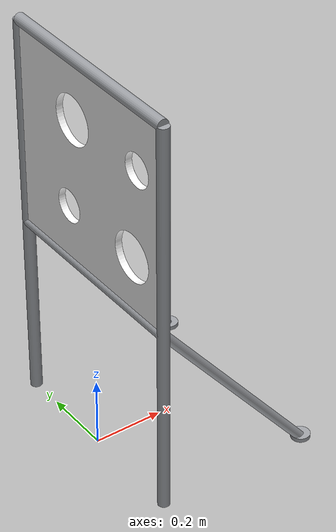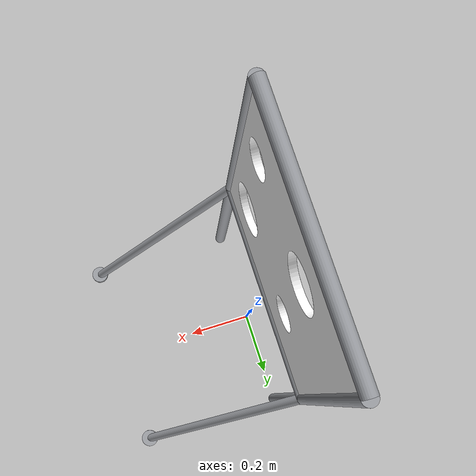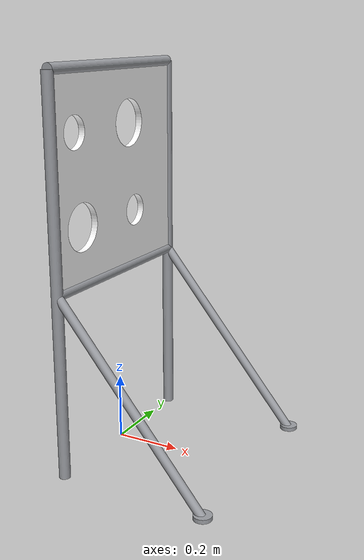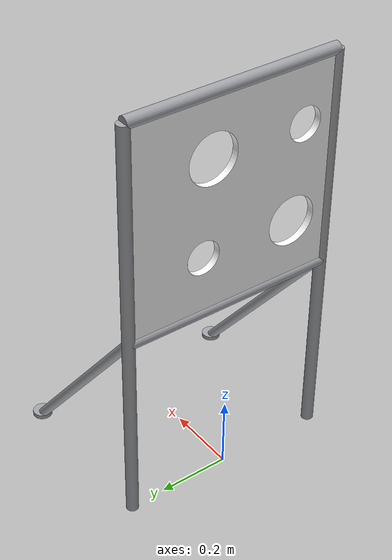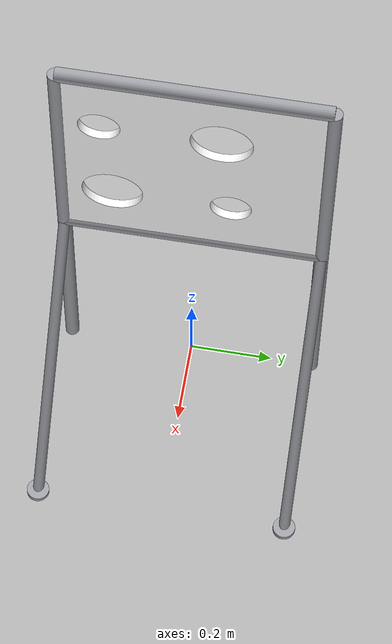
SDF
<?xml version="1.0"?>
<sdf version="1.9">
  <model name="robosub_torpedo_survey_repair">
    <static>true</static>
    <plugin filename="gz-sim-label-system" name="gz::sim::systems::Label">
      <label>15</label>
    </plugin>
    <link name="leg_0">
      <pose>0 -0.3 0.575 0 0 0</pose>
      <inertial>
        <pose>0 0 0 0 0 0</pose>
        <mass>2</mass>
        <inertia>
          <ixx>0.220556</ixx><ixy>0</ixy><ixz>0</ixz>
          <iyy>0.220556</iyy><iyz>0</iyz>
          <izz>0.00027889</izz>
        </inertia>
      </inertial>
      <visual name="leg_0_visual">
        <pose>0 0 0 0 0 0</pose>
        <geometry><cylinder><radius>0.0167</radius><length>1.15</length></cylinder></geometry>
        <material>
          <ambient>0.62 0.63 0.65 1</ambient>
          <diffuse>0.62 0.63 0.65 1</diffuse>
          <specular>0.55 0.55 0.55 1</specular>
          <emissive>0.182 0.182 0.182 1</emissive>
          <pbr>
            <metal>
              <albedo_map>model://robosub_textures/rough_pvc.png</albedo_map>
              <metalness>0.0</metalness>
              <roughness_map>model://robosub_textures/rough_pvc.png</roughness_map>
              <normal_map>model://robosub_textures/norm_pvc.png</normal_map>
            </metal>
          </pbr>
        </material>
      </visual>
      <collision name="leg_0_collision">
        <pose>0 0 0 0 0 0</pose>
        <geometry><cylinder><radius>0.0167</radius><length>1.15</length></cylinder></geometry>
      </collision>
    </link>
    <link name="leg_1">
      <pose>0 0.3 0.575 0 0 0</pose>
      <inertial>
        <pose>0 0 0 0 0 0</pose>
        <mass>2</mass>
        <inertia>
          <ixx>0.220556</ixx><ixy>0</ixy><ixz>0</ixz>
          <iyy>0.220556</iyy><iyz>0</iyz>
          <izz>0.00027889</izz>
        </inertia>
      </inertial>
      <visual name="leg_1_visual">
        <pose>0 0 0 0 0 0</pose>
        <geometry><cylinder><radius>0.0167</radius><length>1.15</length></cylinder></geometry>
        <material>
          <ambient>0.62 0.63 0.65 1</ambient>
          <diffuse>0.62 0.63 0.65 1</diffuse>
          <specular>0.55 0.55 0.55 1</specular>
          <emissive>0.182 0.182 0.182 1</emissive>
          <pbr>
            <metal>
              <albedo_map>model://robosub_textures/rough_pvc.png</albedo_map>
              <metalness>0.0</metalness>
              <roughness_map>model://robosub_textures/rough_pvc.png</roughness_map>
              <normal_map>model://robosub_textures/norm_pvc.png</normal_map>
            </metal>
          </pbr>
        </material>
      </visual>
      <collision name="leg_1_collision">
        <pose>0 0 0 0 0 0</pose>
        <geometry><cylinder><radius>0.0167</radius><length>1.15</length></cylinder></geometry>
      </collision>
    </link>
    <link name="rail_top">
      <pose>0 0 1.15 1.5708 0 0</pose>
      <inertial>
        <pose>0 0 0 0 0 0</pose>
        <mass>1.2</mass>
        <inertia>
          <ixx>0.0360837</ixx><ixy>0</ixy><ixz>0</ixz>
          <iyy>0.0360837</iyy><iyz>0</iyz>
          <izz>0.000167334</izz>
        </inertia>
      </inertial>
      <visual name="rail_top_visual">
        <pose>0 0 0 0 0 0</pose>
        <geometry><cylinder><radius>0.0167</radius><length>0.6</length></cylinder></geometry>
        <material>
          <ambient>0.62 0.63 0.65 1</ambient>
          <diffuse>0.62 0.63 0.65 1</diffuse>
          <specular>0.55 0.55 0.55 1</specular>
          <emissive>0.182 0.182 0.182 1</emissive>
          <pbr>
            <metal>
              <albedo_map>model://robosub_textures/rough_pvc.png</albedo_map>
              <metalness>0.0</metalness>
              <roughness_map>model://robosub_textures/rough_pvc.png</roughness_map>
              <normal_map>model://robosub_textures/norm_pvc.png</normal_map>
            </metal>
          </pbr>
        </material>
      </visual>
      <collision name="rail_top_collision">
        <pose>0 0 0 0 0 0</pose>
        <geometry><cylinder><radius>0.0167</radius><length>0.6</length></cylinder></geometry>
      </collision>
    </link>
    <link name="rail_bottom">
      <pose>0 0 0.55 1.5708 0 0</pose>
      <inertial>
        <pose>0 0 0 0 0 0</pose>
        <mass>1.2</mass>
        <inertia>
          <ixx>0.0360837</ixx><ixy>0</ixy><ixz>0</ixz>
          <iyy>0.0360837</iyy><iyz>0</iyz>
          <izz>0.000167334</izz>
        </inertia>
      </inertial>
      <visual name="rail_bottom_visual">
        <pose>0 0 0 0 0 0</pose>
        <geometry><cylinder><radius>0.0167</radius><length>0.6</length></cylinder></geometry>
        <material>
          <ambient>0.62 0.63 0.65 1</ambient>
          <diffuse>0.62 0.63 0.65 1</diffuse>
          <specular>0.55 0.55 0.55 1</specular>
          <emissive>0.182 0.182 0.182 1</emissive>
          <pbr>
            <metal>
              <albedo_map>model://robosub_textures/rough_pvc.png</albedo_map>
              <metalness>0.0</metalness>
              <roughness_map>model://robosub_textures/rough_pvc.png</roughness_map>
              <normal_map>model://robosub_textures/norm_pvc.png</normal_map>
            </metal>
          </pbr>
        </material>
      </visual>
      <collision name="rail_bottom_collision">
        <pose>0 0 0 0 0 0</pose>
        <geometry><cylinder><radius>0.0167</radius><length>0.6</length></cylinder></geometry>
      </collision>
    </link>
    <link name="brace_0">
      <pose>0.225 -0.3 0.275 0 2.45586 0</pose>
      <inertial>
        <pose>0 0 0 0 0 0</pose>
        <mass>0.8</mass>
        <inertia>
          <ixx>0.0337024</ixx><ixy>0</ixy><ixz>0</ixz>
          <iyy>0.0337024</iyy><iyz>0</iyz>
          <izz>7.13958e-05</izz>
        </inertia>
      </inertial>
      <visual name="brace_0_visual">
        <pose>0 0 0 0 0 0</pose>
        <geometry><cylinder><radius>0.01336</radius><length>0.710634</length></cylinder></geometry>
        <material>
          <ambient>0.62 0.63 0.65 1</ambient>
          <diffuse>0.62 0.63 0.65 1</diffuse>
          <specular>0.55 0.55 0.55 1</specular>
          <emissive>0.182 0.182 0.182 1</emissive>
          <pbr>
            <metal>
              <albedo_map>model://robosub_textures/rough_pvc.png</albedo_map>
              <metalness>0.0</metalness>
              <roughness_map>model://robosub_textures/rough_pvc.png</roughness_map>
              <normal_map>model://robosub_textures/norm_pvc.png</normal_map>
            </metal>
          </pbr>
        </material>
      </visual>
      <collision name="brace_0_collision">
        <pose>0 0 0 0 0 0</pose>
        <geometry><cylinder><radius>0.01336</radius><length>0.710634</length></cylinder></geometry>
      </collision>
    </link>
    <link name="brace_foot_0">
      <pose>0.45 -0.3 0.006 0 0 0</pose>
      <inertial>
        <pose>0 0 0 0 0 0</pose>
        <mass>0.3</mass>
        <inertia>
          <ixx>5.71469e-05</ixx><ixy>0</ixy><ixz>0</ixz>
          <iyy>5.71469e-05</iyy><iyz>0</iyz>
          <izz>0.000107094</izz>
        </inertia>
      </inertial>
      <visual name="brace_foot_0_visual">
        <pose>0 0 0 0 0 0</pose>
        <geometry><cylinder><radius>0.02672</radius><length>0.012</length></cylinder></geometry>
        <material>
          <ambient>0.62 0.63 0.65 1</ambient>
          <diffuse>0.62 0.63 0.65 1</diffuse>
          <specular>0.55 0.55 0.55 1</specular>
          <emissive>0.182 0.182 0.182 1</emissive>
          <pbr>
            <metal>
              <albedo_map>model://robosub_textures/rough_pvc.png</albedo_map>
              <metalness>0.0</metalness>
              <roughness_map>model://robosub_textures/rough_pvc.png</roughness_map>
              <normal_map>model://robosub_textures/norm_pvc.png</normal_map>
            </metal>
          </pbr>
        </material>
      </visual>
      <collision name="brace_foot_0_collision">
        <pose>0 0 0 0 0 0</pose>
        <geometry><cylinder><radius>0.02672</radius><length>0.012</length></cylinder></geometry>
        <surface>
          <friction>
            <ode><mu>0.8</mu><mu2>0.8</mu2></ode>
            <bullet><friction>0.8</friction><friction2>0.8</friction2></bullet>
          </friction>
        </surface>
      </collision>
    </link>
    <link name="brace_1">
      <pose>0.225 0.3 0.275 0 2.45586 0</pose>
      <inertial>
        <pose>0 0 0 0 0 0</pose>
        <mass>0.8</mass>
        <inertia>
          <ixx>0.0337024</ixx><ixy>0</ixy><ixz>0</ixz>
          <iyy>0.0337024</iyy><iyz>0</iyz>
          <izz>7.13958e-05</izz>
        </inertia>
      </inertial>
      <visual name="brace_1_visual">
        <pose>0 0 0 0 0 0</pose>
        <geometry><cylinder><radius>0.01336</radius><length>0.710634</length></cylinder></geometry>
        <material>
          <ambient>0.62 0.63 0.65 1</ambient>
          <diffuse>0.62 0.63 0.65 1</diffuse>
          <specular>0.55 0.55 0.55 1</specular>
          <emissive>0.182 0.182 0.182 1</emissive>
          <pbr>
            <metal>
              <albedo_map>model://robosub_textures/rough_pvc.png</albedo_map>
              <metalness>0.0</metalness>
              <roughness_map>model://robosub_textures/rough_pvc.png</roughness_map>
              <normal_map>model://robosub_textures/norm_pvc.png</normal_map>
            </metal>
          </pbr>
        </material>
      </visual>
      <collision name="brace_1_collision">
        <pose>0 0 0 0 0 0</pose>
        <geometry><cylinder><radius>0.01336</radius><length>0.710634</length></cylinder></geometry>
      </collision>
    </link>
    <link name="brace_foot_1">
      <pose>0.45 0.3 0.006 0 0 0</pose>
      <inertial>
        <pose>0 0 0 0 0 0</pose>
        <mass>0.3</mass>
        <inertia>
          <ixx>5.71469e-05</ixx><ixy>0</ixy><ixz>0</ixz>
          <iyy>5.71469e-05</iyy><iyz>0</iyz>
          <izz>0.000107094</izz>
        </inertia>
      </inertial>
      <visual name="brace_foot_1_visual">
        <pose>0 0 0 0 0 0</pose>
        <geometry><cylinder><radius>0.02672</radius><length>0.012</length></cylinder></geometry>
        <material>
          <ambient>0.62 0.63 0.65 1</ambient>
          <diffuse>0.62 0.63 0.65 1</diffuse>
          <specular>0.55 0.55 0.55 1</specular>
          <emissive>0.182 0.182 0.182 1</emissive>
          <pbr>
            <metal>
              <albedo_map>model://robosub_textures/rough_pvc.png</albedo_map>
              <metalness>0.0</metalness>
              <roughness_map>model://robosub_textures/rough_pvc.png</roughness_map>
              <normal_map>model://robosub_textures/norm_pvc.png</normal_map>
            </metal>
          </pbr>
        </material>
      </visual>
      <collision name="brace_foot_1_collision">
        <pose>0 0 0 0 0 0</pose>
        <geometry><cylinder><radius>0.02672</radius><length>0.012</length></cylinder></geometry>
        <surface>
          <friction>
            <ode><mu>0.8</mu><mu2>0.8</mu2></ode>
            <bullet><friction>0.8</friction><friction2>0.8</friction2></bullet>
          </friction>
        </surface>
      </collision>
    </link>
    <link name="board">
      <pose>0 0 0.85 0 0 0</pose>
      <inertial>
        <pose>0 0 0 0 0 0</pose>
        <mass>3</mass>
        <inertia>
          <ixx>0.18</ixx><ixy>0</ixy><ixz>0</ixz>
          <iyy>0.0901</iyy><iyz>0</iyz>
          <izz>0.0901</izz>
        </inertia>
      </inertial>
      <visual name="board_visual">
        <pose>0 0 0 0 0 0</pose>
        <geometry><mesh><uri>model://robosub_meshes/meshes/torpedo_plate.obj</uri></mesh></geometry>
        <material>
          <ambient>1 1 1 1</ambient>
          <diffuse>1 1 1 1</diffuse>
          <specular>0.06 0.06 0.06 1</specular>
          <emissive>0.1 0.1 0.1 1</emissive>
          <pbr>
            <metal>
              <albedo_map>model://robosub_textures/torpedo_panel_survey_repair.png</albedo_map>
              <metalness>0.0</metalness>
              <roughness>0.6</roughness>
            </metal>
          </pbr>
        </material>
      </visual>
    </link>
    <link name="plate_c0">
      <pose>0 0 0.561538 0 0 0</pose>
      <inertial>
        <pose>0 0 0 0 0 0</pose>
        <mass>0.05</mass>
        <inertia>
          <ixx>0.00150222</ixx><ixy>0</ixy><ixz>0</ixz>
          <iyy>3.8856e-06</iyy><iyz>0</iyz>
          <izz>0.00150167</izz>
        </inertia>
      </inertial>
      <collision name="plate_c0_collision">
        <pose>0 0 0 0 0 0</pose>
        <geometry><box><size>0.02 0.6 0.0230769</size></box></geometry>
      </collision>
    </link>
    <link name="plate_c1">
      <pose>0 0 0.584615 0 0 0</pose>
      <inertial>
        <pose>0 0 0 0 0 0</pose>
        <mass>0.05</mass>
        <inertia>
          <ixx>0.00150222</ixx><ixy>0</ixy><ixz>0</ixz>
          <iyy>3.8856e-06</iyy><iyz>0</iyz>
          <izz>0.00150167</izz>
        </inertia>
      </inertial>
      <collision name="plate_c1_collision">
        <pose>0 0 0 0 0 0</pose>
        <geometry><box><size>0.02 0.6 0.0230769</size></box></geometry>
      </collision>
    </link>
    <link name="plate_c2">
      <pose>0 0 0.607692 0 0 0</pose>
      <inertial>
        <pose>0 0 0 0 0 0</pose>
        <mass>0.05</mass>
        <inertia>
          <ixx>0.00150222</ixx><ixy>0</ixy><ixz>0</ixz>
          <iyy>3.8856e-06</iyy><iyz>0</iyz>
          <izz>0.00150167</izz>
        </inertia>
      </inertial>
      <collision name="plate_c2_collision">
        <pose>0 0 0 0 0 0</pose>
        <geometry><box><size>0.02 0.6 0.0230769</size></box></geometry>
      </collision>
    </link>
    <link name="plate_c3">
      <pose>0 0 0.630769 0 0 0</pose>
      <inertial>
        <pose>0 0 0 0 0 0</pose>
        <mass>0.05</mass>
        <inertia>
          <ixx>0.00150222</ixx><ixy>0</ixy><ixz>0</ixz>
          <iyy>3.8856e-06</iyy><iyz>0</iyz>
          <izz>0.00150167</izz>
        </inertia>
      </inertial>
      <collision name="plate_c3_collision">
        <pose>0 0 0 0 0 0</pose>
        <geometry><box><size>0.02 0.6 0.0230769</size></box></geometry>
      </collision>
    </link>
    <link name="plate_c4">
      <pose>0 -0.255503 0.653846 0 0 0</pose>
      <inertial>
        <pose>0 0 0 0 0 0</pose>
        <mass>0.05</mass>
        <inertia>
          <ixx>3.52193e-05</ixx><ixy>0</ixy><ixz>0</ixz>
          <iyy>3.8856e-06</iyy><iyz>0</iyz>
          <izz>3.46671e-05</izz>
        </inertia>
      </inertial>
      <collision name="plate_c4_collision">
        <pose>0 0 0 0 0 0</pose>
        <geometry><box><size>0.02 0.0889949 0.0230769</size></box></geometry>
      </collision>
    </link>
    <link name="plate_c5">
      <pose>0 0.0725025 0.653846 0 0 0</pose>
      <inertial>
        <pose>0 0 0 0 0 0</pose>
        <mass>0.05</mass>
        <inertia>
          <ixx>0.000864804</ixx><ixy>0</ixy><ixz>0</ixz>
          <iyy>3.8856e-06</iyy><iyz>0</iyz>
          <izz>0.000864252</izz>
        </inertia>
      </inertial>
      <collision name="plate_c5_collision">
        <pose>0 0 0 0 0 0</pose>
        <geometry><box><size>0.02 0.454995 0.0230769</size></box></geometry>
      </collision>
    </link>
    <link name="plate_c6">
      <pose>0 -0.26984 0.676923 0 0 0</pose>
      <inertial>
        <pose>0 0 0 0 0 0</pose>
        <mass>0.05</mass>
        <inertia>
          <ixx>1.73791e-05</ixx><ixy>0</ixy><ixz>0</ixz>
          <iyy>3.8856e-06</iyy><iyz>0</iyz>
          <izz>1.68268e-05</izz>
        </inertia>
      </inertial>
      <collision name="plate_c6_collision">
        <pose>0 0 0 0 0 0</pose>
        <geometry><box><size>0.02 0.0603194 0.0230769</size></box></geometry>
      </collision>
    </link>
    <link name="plate_c7">
      <pose>0 -0.0314609 0.676923 0 0 0</pose>
      <inertial>
        <pose>0 0 0 0 0 0</pose>
        <mass>0.05</mass>
        <inertia>
          <ixx>0.000152188</ixx><ixy>0</ixy><ixz>0</ixz>
          <iyy>3.8856e-06</iyy><iyz>0</iyz>
          <izz>0.000151636</izz>
        </inertia>
      </inertial>
      <collision name="plate_c7_collision">
        <pose>0 0 0 0 0 0</pose>
        <geometry><box><size>0.02 0.189717 0.0230769</size></box></geometry>
      </collision>
    </link>
    <link name="plate_c8">
      <pose>0 0.205551 0.676923 0 0 0</pose>
      <inertial>
        <pose>0 0 0 0 0 0</pose>
        <mass>0.05</mass>
        <inertia>
          <ixx>0.000150895</ixx><ixy>0</ixy><ixz>0</ixz>
          <iyy>3.8856e-06</iyy><iyz>0</iyz>
          <izz>0.000150343</izz>
        </inertia>
      </inertial>
      <collision name="plate_c8_collision">
        <pose>0 0 0 0 0 0</pose>
        <geometry><box><size>0.02 0.188898 0.0230769</size></box></geometry>
      </collision>
    </link>
    <link name="plate_c9">
      <pose>0 -0.275323 0.7 0 0 0</pose>
      <inertial>
        <pose>0 0 0 0 0 0</pose>
        <mass>0.05</mass>
        <inertia>
          <ixx>1.23681e-05</ixx><ixy>0</ixy><ixz>0</ixz>
          <iyy>3.8856e-06</iyy><iyz>0</iyz>
          <izz>1.18158e-05</izz>
        </inertia>
      </inertial>
      <collision name="plate_c9_collision">
        <pose>0 0 0 0 0 0</pose>
        <geometry><box><size>0.02 0.0493539 0.0230769</size></box></geometry>
      </collision>
    </link>
    <link name="plate_c10">
      <pose>0 -0.0360306 0.7 0 0 0</pose>
      <inertial>
        <pose>0 0 0 0 0 0</pose>
        <mass>0.05</mass>
        <inertia>
          <ixx>0.000107089</ixx><ixy>0</ixy><ixz>0</ixz>
          <iyy>3.8856e-06</iyy><iyz>0</iyz>
          <izz>0.000106536</izz>
        </inertia>
      </inertial>
      <collision name="plate_c10_collision">
        <pose>0 0 0 0 0 0</pose>
        <geometry><box><size>0.02 0.158646 0.0230769</size></box></geometry>
      </collision>
    </link>
    <link name="plate_c11">
      <pose>0 0.215604 0.7 0 0 0</pose>
      <inertial>
        <pose>0 0 0 0 0 0</pose>
        <mass>0.05</mass>
        <inertia>
          <ixx>0.000120931</ixx><ixy>0</ixy><ixz>0</ixz>
          <iyy>3.8856e-06</iyy><iyz>0</iyz>
          <izz>0.000120379</izz>
        </inertia>
      </inertial>
      <collision name="plate_c11_collision">
        <pose>0 0 0 0 0 0</pose>
        <geometry><box><size>0.02 0.168793 0.0230769</size></box></geometry>
      </collision>
    </link>
    <link name="plate_c12">
      <pose>0 -0.276408 0.723077 0 0 0</pose>
      <inertial>
        <pose>0 0 0 0 0 0</pose>
        <mass>0.05</mass>
        <inertia>
          <ixx>1.14954e-05</ixx><ixy>0</ixy><ixz>0</ixz>
          <iyy>3.8856e-06</iyy><iyz>0</iyz>
          <izz>1.09432e-05</izz>
        </inertia>
      </inertial>
      <collision name="plate_c12_collision">
        <pose>0 0 0 0 0 0</pose>
        <geometry><box><size>0.02 0.0471844 0.0230769</size></box></geometry>
      </collision>
    </link>
    <link name="plate_c13">
      <pose>0 -0.0365811 0.723077 0 0 0</pose>
      <inertial>
        <pose>0 0 0 0 0 0</pose>
        <mass>0.05</mass>
        <inertia>
          <ixx>0.00010002</ixx><ixy>0</ixy><ixz>0</ixz>
          <iyy>3.8856e-06</iyy><iyz>0</iyz>
          <izz>9.94676e-05</izz>
        </inertia>
      </inertial>
      <collision name="plate_c13_collision">
        <pose>0 0 0 0 0 0</pose>
        <geometry><box><size>0.02 0.153206 0.0230769</size></box></geometry>
      </collision>
    </link>
    <link name="plate_c14">
      <pose>0 0.217239 0.723077 0 0 0</pose>
      <inertial>
        <pose>0 0 0 0 0 0</pose>
        <mass>0.05</mass>
        <inertia>
          <ixx>0.000116375</ixx><ixy>0</ixy><ixz>0</ixz>
          <iyy>3.8856e-06</iyy><iyz>0</iyz>
          <izz>0.000115823</izz>
        </inertia>
      </inertial>
      <collision name="plate_c14_collision">
        <pose>0 0 0 0 0 0</pose>
        <geometry><box><size>0.02 0.165522 0.0230769</size></box></geometry>
      </collision>
    </link>
    <link name="plate_c15">
      <pose>0 -0.273544 0.746154 0 0 0</pose>
      <inertial>
        <pose>0 0 0 0 0 0</pose>
        <mass>0.05</mass>
        <inertia>
          <ixx>1.3884e-05</ixx><ixy>0</ixy><ixz>0</ixz>
          <iyy>3.8856e-06</iyy><iyz>0</iyz>
          <izz>1.33317e-05</izz>
        </inertia>
      </inertial>
      <collision name="plate_c15_collision">
        <pose>0 0 0 0 0 0</pose>
        <geometry><box><size>0.02 0.0529113 0.0230769</size></box></geometry>
      </collision>
    </link>
    <link name="plate_c16">
      <pose>0 -0.0349592 0.746154 0 0 0</pose>
      <inertial>
        <pose>0 0 0 0 0 0</pose>
        <mass>0.05</mass>
        <inertia>
          <ixx>0.000119685</ixx><ixy>0</ixy><ixz>0</ixz>
          <iyy>3.8856e-06</iyy><iyz>0</iyz>
          <izz>0.000119132</izz>
        </inertia>
      </inertial>
      <collision name="plate_c16_collision">
        <pose>0 0 0 0 0 0</pose>
        <geometry><box><size>0.02 0.167904 0.0230769</size></box></geometry>
      </collision>
    </link>
    <link name="plate_c17">
      <pose>0 0.212754 0.746154 0 0 0</pose>
      <inertial>
        <pose>0 0 0 0 0 0</pose>
        <mass>0.05</mass>
        <inertia>
          <ixx>0.000129085</ixx><ixy>0</ixy><ixz>0</ixz>
          <iyy>3.8856e-06</iyy><iyz>0</iyz>
          <izz>0.000128532</izz>
        </inertia>
      </inertial>
      <collision name="plate_c17_collision">
        <pose>0 0 0 0 0 0</pose>
        <geometry><box><size>0.02 0.174493 0.0230769</size></box></geometry>
      </collision>
    </link>
    <link name="plate_c18">
      <pose>0 -0.265351 0.769231 0 0 0</pose>
      <inertial>
        <pose>0 0 0 0 0 0</pose>
        <mass>0.05</mass>
        <inertia>
          <ixx>2.22286e-05</ixx><ixy>0</ixy><ixz>0</ixz>
          <iyy>3.8856e-06</iyy><iyz>0</iyz>
          <izz>2.16763e-05</izz>
        </inertia>
      </inertial>
      <collision name="plate_c18_collision">
        <pose>0 0 0 0 0 0</pose>
        <geometry><box><size>0.02 0.0692988 0.0230769</size></box></geometry>
      </collision>
    </link>
    <link name="plate_c19">
      <pose>0 0.0823506 0.769231 0 0 0</pose>
      <inertial>
        <pose>0 0 0 0 0 0</pose>
        <mass>0.05</mass>
        <inertia>
          <ixx>0.00079174</ixx><ixy>0</ixy><ixz>0</ixz>
          <iyy>3.8856e-06</iyy><iyz>0</iyz>
          <izz>0.000791188</izz>
        </inertia>
      </inertial>
      <collision name="plate_c19_collision">
        <pose>0 0 0 0 0 0</pose>
        <geometry><box><size>0.02 0.435299 0.0230769</size></box></geometry>
      </collision>
    </link>
    <link name="plate_c20">
      <pose>0 0 0.792308 0 0 0</pose>
      <inertial>
        <pose>0 0 0 0 0 0</pose>
        <mass>0.05</mass>
        <inertia>
          <ixx>0.00150222</ixx><ixy>0</ixy><ixz>0</ixz>
          <iyy>3.8856e-06</iyy><iyz>0</iyz>
          <izz>0.00150167</izz>
        </inertia>
      </inertial>
      <collision name="plate_c20_collision">
        <pose>0 0 0 0 0 0</pose>
        <geometry><box><size>0.02 0.6 0.0230769</size></box></geometry>
      </collision>
    </link>
    <link name="plate_c21">
      <pose>0 0 0.815385 0 0 0</pose>
      <inertial>
        <pose>0 0 0 0 0 0</pose>
        <mass>0.05</mass>
        <inertia>
          <ixx>0.00150222</ixx><ixy>0</ixy><ixz>0</ixz>
          <iyy>3.8856e-06</iyy><iyz>0</iyz>
          <izz>0.00150167</izz>
        </inertia>
      </inertial>
      <collision name="plate_c21_collision">
        <pose>0 0 0 0 0 0</pose>
        <geometry><box><size>0.02 0.6 0.0230769</size></box></geometry>
      </collision>
    </link>
    <link name="plate_c22">
      <pose>0 0 0.838462 0 0 0</pose>
      <inertial>
        <pose>0 0 0 0 0 0</pose>
        <mass>0.05</mass>
        <inertia>
          <ixx>0.00150222</ixx><ixy>0</ixy><ixz>0</ixz>
          <iyy>3.8856e-06</iyy><iyz>0</iyz>
          <izz>0.00150167</izz>
        </inertia>
      </inertial>
      <collision name="plate_c22_collision">
        <pose>0 0 0 0 0 0</pose>
        <geometry><box><size>0.02 0.6 0.0230769</size></box></geometry>
      </collision>
    </link>
    <link name="plate_c23">
      <pose>0 0 0.861538 0 0 0</pose>
      <inertial>
        <pose>0 0 0 0 0 0</pose>
        <mass>0.05</mass>
        <inertia>
          <ixx>0.00150222</ixx><ixy>0</ixy><ixz>0</ixz>
          <iyy>3.8856e-06</iyy><iyz>0</iyz>
          <izz>0.00150167</izz>
        </inertia>
      </inertial>
      <collision name="plate_c23_collision">
        <pose>0 0 0 0 0 0</pose>
        <geometry><box><size>0.02 0.6 0.0230769</size></box></geometry>
      </collision>
    </link>
    <link name="plate_c24">
      <pose>0 0 0.884615 0 0 0</pose>
      <inertial>
        <pose>0 0 0 0 0 0</pose>
        <mass>0.05</mass>
        <inertia>
          <ixx>0.00150222</ixx><ixy>0</ixy><ixz>0</ixz>
          <iyy>3.8856e-06</iyy><iyz>0</iyz>
          <izz>0.00150167</izz>
        </inertia>
      </inertial>
      <collision name="plate_c24_collision">
        <pose>0 0 0 0 0 0</pose>
        <geometry><box><size>0.02 0.6 0.0230769</size></box></geometry>
      </collision>
    </link>
    <link name="plate_c25">
      <pose>0 0 0.907692 0 0 0</pose>
      <inertial>
        <pose>0 0 0 0 0 0</pose>
        <mass>0.05</mass>
        <inertia>
          <ixx>0.00150222</ixx><ixy>0</ixy><ixz>0</ixz>
          <iyy>3.8856e-06</iyy><iyz>0</iyz>
          <izz>0.00150167</izz>
        </inertia>
      </inertial>
      <collision name="plate_c25_collision">
        <pose>0 0 0 0 0 0</pose>
        <geometry><box><size>0.02 0.6 0.0230769</size></box></geometry>
      </collision>
    </link>
    <link name="plate_c26">
      <pose>0 -0.142601 0.930769 0 0 0</pose>
      <inertial>
        <pose>0 0 0 0 0 0</pose>
        <mass>0.05</mass>
        <inertia>
          <ixx>0.000415128</ixx><ixy>0</ixy><ixz>0</ixz>
          <iyy>3.8856e-06</iyy><iyz>0</iyz>
          <izz>0.000414576</izz>
        </inertia>
      </inertial>
      <collision name="plate_c26_collision">
        <pose>0 0 0 0 0 0</pose>
        <geometry><box><size>0.02 0.314799 0.0230769</size></box></geometry>
      </collision>
    </link>
    <link name="plate_c27">
      <pose>0 0.205101 0.930769 0 0 0</pose>
      <inertial>
        <pose>0 0 0 0 0 0</pose>
        <mass>0.05</mass>
        <inertia>
          <ixx>0.000152317</ixx><ixy>0</ixy><ixz>0</ixz>
          <iyy>3.8856e-06</iyy><iyz>0</iyz>
          <izz>0.000151765</izz>
        </inertia>
      </inertial>
      <collision name="plate_c27_collision">
        <pose>0 0 0 0 0 0</pose>
        <geometry><box><size>0.02 0.189799 0.0230769</size></box></geometry>
      </collision>
    </link>
    <link name="plate_c28">
      <pose>0 -0.273004 0.953846 0 0 0</pose>
      <inertial>
        <pose>0 0 0 0 0 0</pose>
        <mass>0.05</mass>
        <inertia>
          <ixx>1.43657e-05</ixx><ixy>0</ixy><ixz>0</ixz>
          <iyy>3.8856e-06</iyy><iyz>0</iyz>
          <izz>1.38134e-05</izz>
        </inertia>
      </inertial>
      <collision name="plate_c28_collision">
        <pose>0 0 0 0 0 0</pose>
        <geometry><box><size>0.02 0.0539928 0.0230769</size></box></geometry>
      </collision>
    </link>
    <link name="plate_c29">
      <pose>0 -0.0855408 0.953846 0 0 0</pose>
      <inertial>
        <pose>0 0 0 0 0 0</pose>
        <mass>0.05</mass>
        <inertia>
          <ixx>0.000119685</ixx><ixy>0</ixy><ixz>0</ixz>
          <iyy>3.8856e-06</iyy><iyz>0</iyz>
          <izz>0.000119132</izz>
        </inertia>
      </inertial>
      <collision name="plate_c29_collision">
        <pose>0 0 0 0 0 0</pose>
        <geometry><box><size>0.02 0.167904 0.0230769</size></box></geometry>
      </collision>
    </link>
    <link name="plate_c30">
      <pose>0 0.213294 0.953846 0 0 0</pose>
      <inertial>
        <pose>0 0 0 0 0 0</pose>
        <mass>0.05</mass>
        <inertia>
          <ixx>0.000127517</ixx><ixy>0</ixy><ixz>0</ixz>
          <iyy>3.8856e-06</iyy><iyz>0</iyz>
          <izz>0.000126965</izz>
        </inertia>
      </inertial>
      <collision name="plate_c30_collision">
        <pose>0 0 0 0 0 0</pose>
        <geometry><box><size>0.02 0.173411 0.0230769</size></box></geometry>
      </collision>
    </link>
    <link name="plate_c31">
      <pose>0 -0.277489 0.976923 0 0 0</pose>
      <inertial>
        <pose>0 0 0 0 0 0</pose>
        <mass>0.05</mass>
        <inertia>
          <ixx>1.06647e-05</ixx><ixy>0</ixy><ixz>0</ixz>
          <iyy>3.8856e-06</iyy><iyz>0</iyz>
          <izz>1.01125e-05</izz>
        </inertia>
      </inertial>
      <collision name="plate_c31_collision">
        <pose>0 0 0 0 0 0</pose>
        <geometry><box><size>0.02 0.0450221 0.0230769</size></box></geometry>
      </collision>
    </link>
    <link name="plate_c32">
      <pose>0 -0.0839189 0.976923 0 0 0</pose>
      <inertial>
        <pose>0 0 0 0 0 0</pose>
        <mass>0.05</mass>
        <inertia>
          <ixx>0.00010002</ixx><ixy>0</ixy><ixz>0</ixz>
          <iyy>3.8856e-06</iyy><iyz>0</iyz>
          <izz>9.94676e-05</izz>
        </inertia>
      </inertial>
      <collision name="plate_c32_collision">
        <pose>0 0 0 0 0 0</pose>
        <geometry><box><size>0.02 0.153206 0.0230769</size></box></geometry>
      </collision>
    </link>
    <link name="plate_c33">
      <pose>0 0.216158 0.976923 0 0 0</pose>
      <inertial>
        <pose>0 0 0 0 0 0</pose>
        <mass>0.05</mass>
        <inertia>
          <ixx>0.000119377</ixx><ixy>0</ixy><ixz>0</ixz>
          <iyy>3.8856e-06</iyy><iyz>0</iyz>
          <izz>0.000118825</izz>
        </inertia>
      </inertial>
      <collision name="plate_c33_collision">
        <pose>0 0 0 0 0 0</pose>
        <geometry><box><size>0.02 0.167684 0.0230769</size></box></geometry>
      </collision>
    </link>
    <link name="plate_c34">
      <pose>0 -0.275854 1 0 0 0</pose>
      <inertial>
        <pose>0 0 0 0 0 0</pose>
        <mass>0.05</mass>
        <inertia>
          <ixx>1.19363e-05</ixx><ixy>0</ixy><ixz>0</ixz>
          <iyy>3.8856e-06</iyy><iyz>0</iyz>
          <izz>1.13841e-05</izz>
        </inertia>
      </inertial>
      <collision name="plate_c34_collision">
        <pose>0 0 0 0 0 0</pose>
        <geometry><box><size>0.02 0.0482926 0.0230769</size></box></geometry>
      </collision>
    </link>
    <link name="plate_c35">
      <pose>0 -0.0844694 1 0 0 0</pose>
      <inertial>
        <pose>0 0 0 0 0 0</pose>
        <mass>0.05</mass>
        <inertia>
          <ixx>0.000107089</ixx><ixy>0</ixy><ixz>0</ixz>
          <iyy>3.8856e-06</iyy><iyz>0</iyz>
          <izz>0.000106536</izz>
        </inertia>
      </inertial>
      <collision name="plate_c35_collision">
        <pose>0 0 0 0 0 0</pose>
        <geometry><box><size>0.02 0.158646 0.0230769</size></box></geometry>
      </collision>
    </link>
    <link name="plate_c36">
      <pose>0 0.215073 1 0 0 0</pose>
      <inertial>
        <pose>0 0 0 0 0 0</pose>
        <mass>0.05</mass>
        <inertia>
          <ixx>0.000122429</ixx><ixy>0</ixy><ixz>0</ixz>
          <iyy>3.8856e-06</iyy><iyz>0</iyz>
          <izz>0.000121876</izz>
        </inertia>
      </inertial>
      <collision name="plate_c36_collision">
        <pose>0 0 0 0 0 0</pose>
        <geometry><box><size>0.02 0.169854 0.0230769</size></box></geometry>
      </collision>
    </link>
    <link name="plate_c37">
      <pose>0 -0.265801 1.02308 0 0 0</pose>
      <inertial>
        <pose>0 0 0 0 0 0</pose>
        <mass>0.05</mass>
        <inertia>
          <ixx>2.17116e-05</ixx><ixy>0</ixy><ixz>0</ixz>
          <iyy>3.8856e-06</iyy><iyz>0</iyz>
          <izz>2.11593e-05</izz>
        </inertia>
      </inertial>
      <collision name="plate_c37_collision">
        <pose>0 0 0 0 0 0</pose>
        <geometry><box><size>0.02 0.0683976 0.0230769</size></box></geometry>
      </collision>
    </link>
    <link name="plate_c38">
      <pose>0 -0.0890391 1.02308 0 0 0</pose>
      <inertial>
        <pose>0 0 0 0 0 0</pose>
        <mass>0.05</mass>
        <inertia>
          <ixx>0.000152188</ixx><ixy>0</ixy><ixz>0</ixz>
          <iyy>3.8856e-06</iyy><iyz>0</iyz>
          <izz>0.000151636</izz>
        </inertia>
      </inertial>
      <collision name="plate_c38_collision">
        <pose>0 0 0 0 0 0</pose>
        <geometry><box><size>0.02 0.189717 0.0230769</size></box></geometry>
      </collision>
    </link>
    <link name="plate_c39">
      <pose>0 0.20959 1.02308 0 0 0</pose>
      <inertial>
        <pose>0 0 0 0 0 0</pose>
        <mass>0.05</mass>
        <inertia>
          <ixx>0.000138451</ixx><ixy>0</ixy><ixz>0</ixz>
          <iyy>3.8856e-06</iyy><iyz>0</iyz>
          <izz>0.000137899</izz>
        </inertia>
      </inertial>
      <collision name="plate_c39_collision">
        <pose>0 0 0 0 0 0</pose>
        <geometry><box><size>0.02 0.180819 0.0230769</size></box></geometry>
      </collision>
    </link>
    <link name="plate_c40">
      <pose>0 -0.132753 1.04615 0 0 0</pose>
      <inertial>
        <pose>0 0 0 0 0 0</pose>
        <mass>0.05</mass>
        <inertia>
          <ixx>0.000468414</ixx><ixy>0</ixy><ixz>0</ixz>
          <iyy>3.8856e-06</iyy><iyz>0</iyz>
          <izz>0.000467862</izz>
        </inertia>
      </inertial>
      <collision name="plate_c40_collision">
        <pose>0 0 0 0 0 0</pose>
        <geometry><box><size>0.02 0.334495 0.0230769</size></box></geometry>
      </collision>
    </link>
    <link name="plate_c41">
      <pose>0 0.195253 1.04615 0 0 0</pose>
      <inertial>
        <pose>0 0 0 0 0 0</pose>
        <mass>0.05</mass>
        <inertia>
          <ixx>0.000185086</ixx><ixy>0</ixy><ixz>0</ixz>
          <iyy>3.8856e-06</iyy><iyz>0</iyz>
          <izz>0.000184534</izz>
        </inertia>
      </inertial>
      <collision name="plate_c41_collision">
        <pose>0 0 0 0 0 0</pose>
        <geometry><box><size>0.02 0.209495 0.0230769</size></box></geometry>
      </collision>
    </link>
    <link name="plate_c42">
      <pose>0 0 1.06923 0 0 0</pose>
      <inertial>
        <pose>0 0 0 0 0 0</pose>
        <mass>0.05</mass>
        <inertia>
          <ixx>0.00150222</ixx><ixy>0</ixy><ixz>0</ixz>
          <iyy>3.8856e-06</iyy><iyz>0</iyz>
          <izz>0.00150167</izz>
        </inertia>
      </inertial>
      <collision name="plate_c42_collision">
        <pose>0 0 0 0 0 0</pose>
        <geometry><box><size>0.02 0.6 0.0230769</size></box></geometry>
      </collision>
    </link>
    <link name="plate_c43">
      <pose>0 0 1.09231 0 0 0</pose>
      <inertial>
        <pose>0 0 0 0 0 0</pose>
        <mass>0.05</mass>
        <inertia>
          <ixx>0.00150222</ixx><ixy>0</ixy><ixz>0</ixz>
          <iyy>3.8856e-06</iyy><iyz>0</iyz>
          <izz>0.00150167</izz>
        </inertia>
      </inertial>
      <collision name="plate_c43_collision">
        <pose>0 0 0 0 0 0</pose>
        <geometry><box><size>0.02 0.6 0.0230769</size></box></geometry>
      </collision>
    </link>
    <link name="plate_c44">
      <pose>0 0 1.11538 0 0 0</pose>
      <inertial>
        <pose>0 0 0 0 0 0</pose>
        <mass>0.05</mass>
        <inertia>
          <ixx>0.00150222</ixx><ixy>0</ixy><ixz>0</ixz>
          <iyy>3.8856e-06</iyy><iyz>0</iyz>
          <izz>0.00150167</izz>
        </inertia>
      </inertial>
      <collision name="plate_c44_collision">
        <pose>0 0 0 0 0 0</pose>
        <geometry><box><size>0.02 0.6 0.0230769</size></box></geometry>
      </collision>
    </link>
    <link name="plate_c45">
      <pose>0 0 1.13846 0 0 0</pose>
      <inertial>
        <pose>0 0 0 0 0 0</pose>
        <mass>0.05</mass>
        <inertia>
          <ixx>0.00150222</ixx><ixy>0</ixy><ixz>0</ixz>
          <iyy>3.8856e-06</iyy><iyz>0</iyz>
          <izz>0.00150167</izz>
        </inertia>
      </inertial>
      <collision name="plate_c45_collision">
        <pose>0 0 0 0 0 0</pose>
        <geometry><box><size>0.02 0.6 0.0230769</size></box></geometry>
      </collision>
    </link>
  </model>
</sdf>
